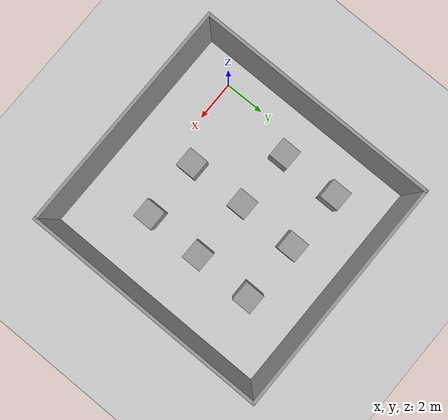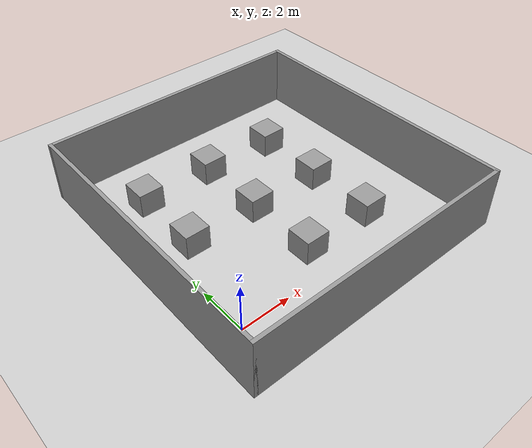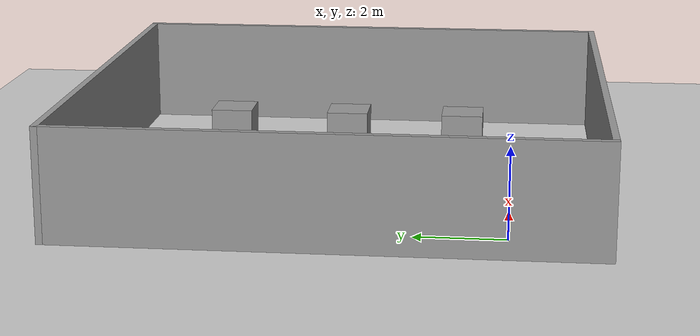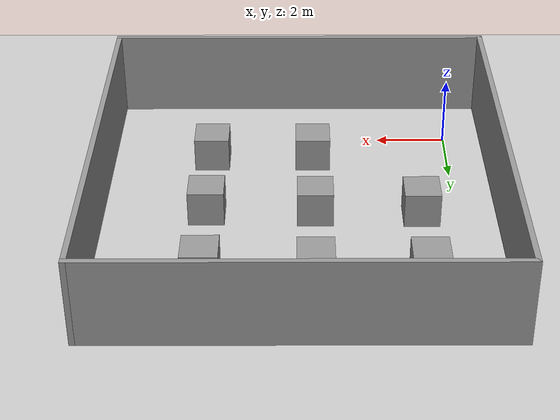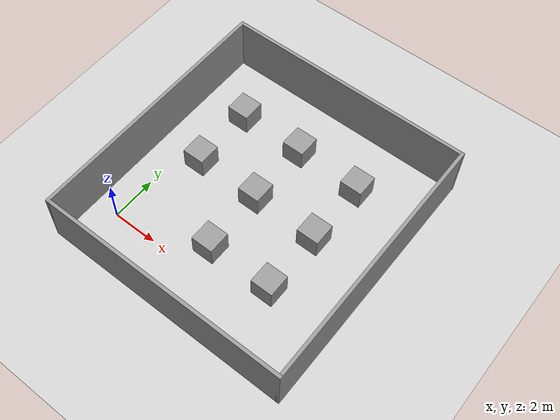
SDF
<sdf version="1.6">
 <world name="default">
  <light name="sun" type="directional">
   <pose>0 0 10 0 -0 0</pose>
   <diffuse>0.8 0.8 0.8 1</diffuse>
   <specular>0.2 0.2 0.2 1</specular>
   <attenuation>
    <range>1000</range>
    <constant>0.9</constant>
    <linear>0.01</linear>
    <quadratic>0.001</quadratic>
   </attenuation>
   <direction>-0.5 0.1 -0.9</direction>
  </light>
  <model name="ground_plane">
   <static>1</static>
   <link name="link">
    <collision name="collision">
     <geometry><plane><normal>0 0 1</normal><size>100 100</size></plane></geometry>
     <surface><friction><ode><mu>100</mu><mu2>50</mu2></ode></friction></surface>
    </collision>
    <visual name="visual">
     <cast_shadows>0</cast_shadows>
     <geometry><plane><normal>0 0 1</normal><size>100 100</size></plane></geometry>
     <material>
      <script><uri>file://media/materials/scripts/gazebo.material</uri><name>Gazebo/Grey</name></script>
     </material>
    </visual>
   </link>
  </model>
  <gravity>0 0 -9.8</gravity>
  <magnetic_field>6e-06 2.3e-05 -4.2e-05</magnetic_field>
  <atmosphere type="adiabatic"/>
  <physics name="default_physics" default="0" type="ode">
   <max_step_size>0.001</max_step_size>
   <real_time_factor>1</real_time_factor>
   <real_time_update_rate>1000</real_time_update_rate>
  </physics>
  <scene><ambient>0.4 0.4 0.4 1</ambient><background>0.7 0.7 0.7 1</background><shadows>1</shadows></scene>
  <spherical_coordinates>
   <surface_model>EARTH_WGS84</surface_model>
   <latitude_deg>0</latitude_deg>
   <longitude_deg>0</longitude_deg>
   <elevation>0</elevation>
   <heading_deg>0</heading_deg>
  </spherical_coordinates>
  <model name="Untitled2">
   <pose>4.36 3.76 0 0 -0 0</pose>
   <link name="Wall_0">
    <collision name="Wall_0_Collision">
     <geometry><box><size>11.25 0.15 2.5</size></box></geometry>
     <pose>0 0 1.25 0 -0 0</pose>
    </collision>
    <visual name="Wall_0_Visual">
     <pose>0 0 1.25 0 -0 0</pose>
     <geometry><box><size>11.25 0.15 2.5</size></box></geometry>
     <material>
      <script><uri>file://media/materials/scripts/gazebo.material</uri><name>Gazebo/Grey</name></script>
      <ambient>1 1 1 1</ambient>
     </material>
     <meta><layer>0</layer></meta>
    </visual>
    <pose>0 -5.8 0 0 -0 0</pose>
   </link>
   <link name="Wall_1">
    <collision name="Wall_1_Collision">
     <geometry><box><size>11.75 0.15 2.5</size></box></geometry>
     <pose>0 0 1.25 0 -0 0</pose>
    </collision>
    <visual name="Wall_1_Visual">
     <pose>0 0 1.25 0 -0 0</pose>
     <geometry><box><size>11.75 0.15 2.5</size></box></geometry>
     <material>
      <script><uri>file://media/materials/scripts/gazebo.material</uri><name>Gazebo/Grey</name></script>
      <ambient>1 1 1 1</ambient>
     </material>
     <meta><layer>0</layer></meta>
    </visual>
    <pose>5.55 0 0 0 -0 1.5708</pose>
   </link>
   <link name="Wall_2">
    <collision name="Wall_2_Collision">
     <geometry><box><size>11.25 0.15 2.5</size></box></geometry>
     <pose>0 0 1.25 0 -0 0</pose>
    </collision>
    <visual name="Wall_2_Visual">
     <pose>0 0 1.25 0 -0 0</pose>
     <geometry><box><size>11.25 0.15 2.5</size></box></geometry>
     <material>
      <script><uri>file://media/materials/scripts/gazebo.material</uri><name>Gazebo/Grey</name></script>
      <ambient>1 1 1 1</ambient>
     </material>
     <meta><layer>0</layer></meta>
    </visual>
    <pose>0 5.8 0 0 -0 3.14159</pose>
   </link>
   <link name="Wall_3">
    <collision name="Wall_3_Collision">
     <geometry><box><size>11.75 0.15 2.5</size></box></geometry>
     <pose>0 0 1.25 0 -0 0</pose>
    </collision>
    <visual name="Wall_3_Visual">
     <pose>0 0 1.25 0 -0 0</pose>
     <geometry><box><size>11.75 0.15 2.5</size></box></geometry>
     <material>
      <script><uri>file://media/materials/scripts/gazebo.material</uri><name>Gazebo/Grey</name></script>
      <ambient>1 1 1 1</ambient>
     </material>
     <meta><layer>0</layer></meta>
    </visual>
    <pose>-5.55 0 0 0 0 -1.5708</pose>
   </link>
   <static>1</static>
  </model>
  <model name="unit_box_1">
   <pose>3.94075 4.07667 0.499995 0 1e-05 0</pose>
   <link name="link">
    <inertial>
     <mass>1</mass>
     <inertia>
      <ixx>0.166667</ixx>
      <ixy>0</ixy>
      <ixz>0</ixz>
      <iyy>0.166667</iyy>
      <iyz>0</iyz>
      <izz>0.166667</izz>
     </inertia>
    </inertial>
    <collision name="collision"><geometry><box><size>1 1 1</size></box></geometry></collision>
    <visual name="visual">
     <geometry><box><size>1 1 1</size></box></geometry>
     <material>
      <script><name>Gazebo/Grey</name><uri>file://media/materials/scripts/gazebo.material</uri></script>
     </material>
    </visual>
   </link>
  </model>
  <model name="unit_box_2">
   <pose>6.92652 1.18792 0.499995 1e-05 -0 0</pose>
   <link name="link">
    <inertial>
     <mass>1</mass>
     <inertia>
      <ixx>0.166667</ixx>
      <ixy>0</ixy>
      <ixz>0</ixz>
      <iyy>0.166667</iyy>
      <iyz>0</iyz>
      <izz>0.166667</izz>
     </inertia>
    </inertial>
    <collision name="collision"><geometry><box><size>1 1 1</size></box></geometry></collision>
    <visual name="visual">
     <geometry><box><size>1 1 1</size></box></geometry>
     <material>
      <script><name>Gazebo/Grey</name><uri>file://media/materials/scripts/gazebo.material</uri></script>
     </material>
    </visual>
   </link>
  </model>
  <model name="unit_box_0">
   <pose>3.98296 1.18718 0.499995 0 -1e-05 0</pose>
   <link name="link">
    <inertial>
     <mass>1</mass>
     <inertia>
      <ixx>0.166667</ixx>
      <ixy>0</ixy>
      <ixz>0</ixz>
      <iyy>0.166667</iyy>
      <iyz>0</iyz>
      <izz>0.166667</izz>
     </inertia>
    </inertial>
    <collision name="collision"><geometry><box><size>1 1 1</size></box></geometry></collision>
    <visual name="visual">
     <geometry><box><size>1 1 1</size></box></geometry>
     <material>
      <script><name>Gazebo/Grey</name><uri>file://media/materials/scripts/gazebo.material</uri></script>
     </material>
    </visual>
   </link>
  </model>
  <model name="unit_box">
   <pose>1.00002 4.10638 0.499995 1e-05 -0 0</pose>
   <link name="link">
    <inertial>
     <mass>1</mass>
     <inertia>
      <ixx>0.166667</ixx>
      <ixy>0</ixy>
      <ixz>0</ixz>
      <iyy>0.166667</iyy>
      <iyz>0</iyz>
      <izz>0.166667</izz>
     </inertia>
    </inertial>
    <collision name="collision"><geometry><box><size>1 1 1</size></box></geometry></collision>
    <visual name="visual">
     <geometry><box><size>1 1 1</size></box></geometry>
     <material>
      <script><name>Gazebo/Grey</name><uri>file://media/materials/scripts/gazebo.material</uri></script>
     </material>
    </visual>
   </link>
  </model>
  <model name="unit_box_3">
   <pose>6.94786 4.01876 0.499995 -1e-05 0 0</pose>
   <link name="link">
    <inertial>
     <mass>1</mass>
     <inertia>
      <ixx>0.166667</ixx>
      <ixy>0</ixy>
      <ixz>0</ixz>
      <iyy>0.166667</iyy>
      <iyz>0</iyz>
      <izz>0.166667</izz>
     </inertia>
    </inertial>
    <collision name="collision"><geometry><box><size>1 1 1</size></box></geometry></collision>
    <visual name="visual">
     <geometry><box><size>1 1 1</size></box></geometry>
     <material>
      <script><name>Gazebo/Grey</name><uri>file://media/materials/scripts/gazebo.material</uri></script>
     </material>
    </visual>
   </link>
  </model>
  <model name="unit_box_4">
   <pose>6.95936 6.9063 0.499995 0 -1e-05 0</pose>
   <link name="link">
    <inertial>
     <mass>1</mass>
     <inertia>
      <ixx>0.166667</ixx>
      <ixy>0</ixy>
      <ixz>0</ixz>
      <iyy>0.166667</iyy>
      <iyz>0</iyz>
      <izz>0.166667</izz>
     </inertia>
    </inertial>
    <collision name="collision"><geometry><box><size>1 1 1</size></box></geometry></collision>
    <visual name="visual">
     <geometry><box><size>1 1 1</size></box></geometry>
     <material>
      <script><name>Gazebo/Grey</name><uri>file://media/materials/scripts/gazebo.material</uri></script>
     </material>
    </visual>
   </link>
  </model>
  <model name="unit_box_5">
   <pose>3.96065 6.99394 0.499995 0 1e-05 0</pose>
   <link name="link">
    <inertial>
     <mass>1</mass>
     <inertia>
      <ixx>0.166667</ixx>
      <ixy>0</ixy>
      <ixz>0</ixz>
      <iyy>0.166667</iyy>
      <iyz>0</iyz>
      <izz>0.166667</izz>
     </inertia>
    </inertial>
    <collision name="collision"><geometry><box><size>1 1 1</size></box></geometry></collision>
    <visual name="visual">
     <geometry><box><size>1 1 1</size></box></geometry>
     <material>
      <script><name>Gazebo/Grey</name><uri>file://media/materials/scripts/gazebo.material</uri></script>
     </material>
    </visual>
   </link>
  </model>
  <model name="unit_box_6">
   <pose>0.992581 7.00883 0.499995 0 1e-05 0</pose>
   <link name="link">
    <inertial>
     <mass>1</mass>
     <inertia>
      <ixx>0.166667</ixx>
      <ixy>0</ixy>
      <ixz>0</ixz>
      <iyy>0.166667</iyy>
      <iyz>0</iyz>
      <izz>0.166667</izz>
     </inertia>
    </inertial>
    <collision name="collision"><geometry><box><size>1 1 1</size></box></geometry></collision>
    <visual name="visual">
     <geometry><box><size>1 1 1</size></box></geometry>
     <material>
      <script><name>Gazebo/Grey</name><uri>file://media/materials/scripts/gazebo.material</uri></script>
     </material>
    </visual>
   </link>
  </model>
 </world>
</sdf>
